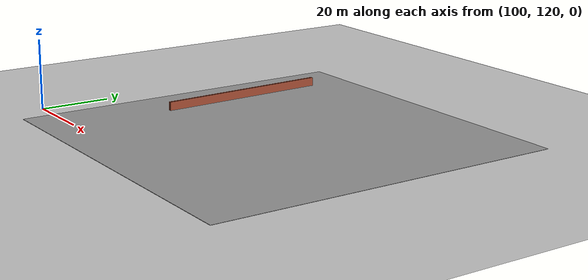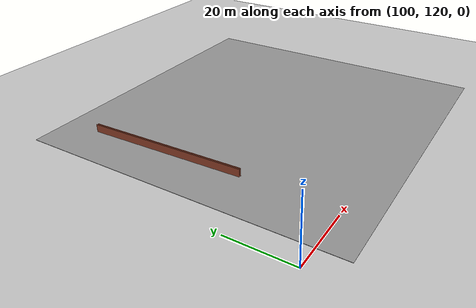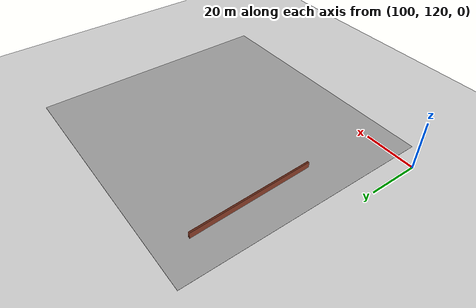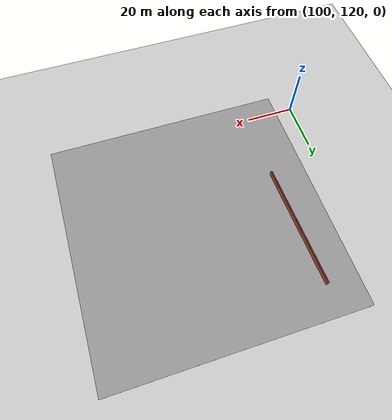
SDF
<sdf version="1.5">
 <world name="default">
  <model name="ground_plane">
   <static>1</static>
   <link name="link">
    <collision name="collision">
     <geometry><plane><normal>0 0 1</normal><size>100 100</size></plane></geometry>
     <surface><friction><ode><mu>100</mu><mu2>50</mu2></ode></friction></surface>
    </collision>
    <visual name="visual">
     <cast_shadows>0</cast_shadows>
     <geometry><plane><normal>0 0 1</normal><size>100 100</size></plane></geometry>
     <material>
      <script><uri>file://media/materials/scripts/gazebo.material</uri><name>Gazebo/Grey</name></script>
     </material>
    </visual>
   </link>
  </model>
  <model name="ground_plane_0">
   <static>1</static>
   <link name="link">
    <collision name="collision">
     <geometry><plane><normal>0 0 1</normal><size>100 100</size></plane></geometry>
     <surface><friction><ode><mu>100</mu><mu2>50</mu2></ode></friction></surface>
    </collision>
    <visual name="visual">
     <cast_shadows>0</cast_shadows>
     <geometry><plane><normal>0 0 1</normal><size>100 100</size></plane></geometry>
     <material>
      <script><uri>file://media/materials/scripts/gazebo.material</uri><name>Gazebo/Grey</name></script>
     </material>
    </visual>
   </link>
   <pose>157 161 0 0 -0 0</pose>
  </model>
  <model name="wall1_clone_6_clone">
   <pose>120.45 174 0 0 -0 1.60154</pose>
   <link name="Wall_0">
    <collision name="Wall_0_Collision">
     <geometry><box><size>50 0.15 2.5</size></box></geometry>
     <pose>0 0 1.25 0 -0 0</pose>
    </collision>
    <visual name="Wall_0_Visual">
     <pose>0 0 1.25 0 -0 0</pose>
     <geometry><box><size>50 0.15 2.5</size></box></geometry>
     <material>
      <script><uri>file://media/materials/scripts/gazebo.material</uri><name>Gazebo/Bricks</name></script>
      <ambient>1 1 1 1</ambient>
     </material>
    </visual>
    <pose>1e-06 0 0 0 -0 3.14159</pose>
   </link>
   <static>1</static>
  </model>
  <model name="wall1_clone_6_clone_0">
   <pose>121 174 0 0 -0 1.60154</pose>
   <link name="Wall_0">
    <collision name="Wall_0_Collision">
     <geometry><box><size>50 0.15 2.5</size></box></geometry>
     <pose>0 0 1.25 0 -0 0</pose>
    </collision>
    <visual name="Wall_0_Visual">
     <pose>0 0 1.25 0 -0 0</pose>
     <geometry><box><size>50 0.15 2.5</size></box></geometry>
     <material>
      <script><uri>file://media/materials/scripts/gazebo.material</uri><name>Gazebo/Bricks</name></script>
      <ambient>1 1 1 1</ambient>
     </material>
    </visual>
    <pose>1e-06 0 0 0 -0 3.14159</pose>
   </link>
   <static>1</static>
  </model>
 </world>
</sdf>
